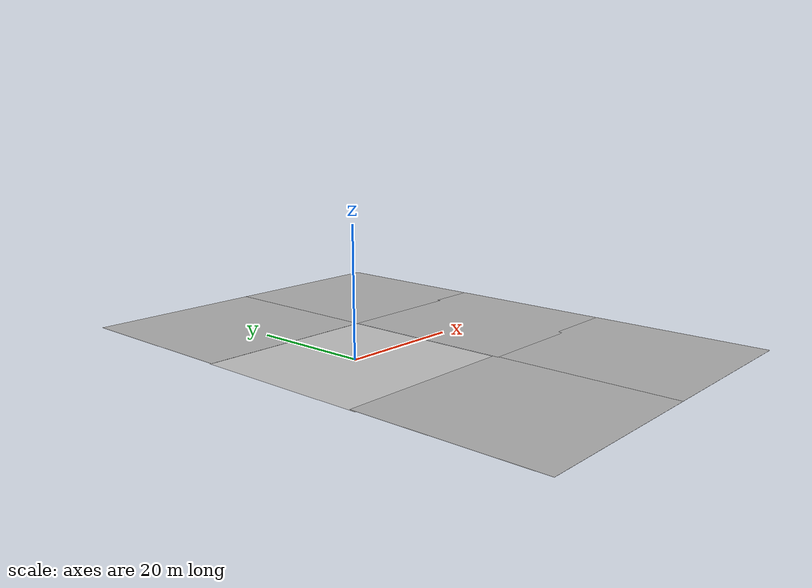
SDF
<sdf version="1.7">
 <world name="default">
  <model name="ISCAS_groundplane">
   <static>1</static>
   <link name="link">
    <collision name="collision">
     <geometry><plane><normal>0 0 1</normal><size>30 30</size></plane></geometry>
     <surface><friction><ode><mu>100</mu><mu2>50</mu2></ode></friction></surface>
    </collision>
    <visual name="visual">
     <cast_shadows>0</cast_shadows>
     <geometry><plane><normal>0 0 1</normal><size>30 30</size></plane></geometry>
     <material>
      <script>
       <uri>model://ISCAS_groundplane/materials/scripts</uri>
       <uri>model://ISCAS_groundplane/materials/textures</uri>
       <name>ISCAS_groundplane/Image</name>
      </script>
     </material>
    </visual>
   </link>
  </model>
  <light name="sun" type="directional">
   <pose>0 0 10 0 -0 0</pose>
   <diffuse>0.8 0.8 0.8 1</diffuse>
   <specular>0.2 0.2 0.2 1</specular>
   <attenuation>
    <range>1000</range>
    <constant>0.9</constant>
    <linear>0.01</linear>
    <quadratic>0.001</quadratic>
   </attenuation>
   <direction>-0.5 0.1 -0.9</direction>
   <spot><inner_angle>0</inner_angle><outer_angle>0</outer_angle><falloff>0</falloff></spot>
  </light>
  <gravity>0 0 -9.8</gravity>
  <magnetic_field>6e-06 2.3e-05 -4.2e-05</magnetic_field>
  <atmosphere type="adiabatic"/>
  <physics type="ode">
   <max_step_size>0.001</max_step_size>
   <real_time_factor>1</real_time_factor>
   <real_time_update_rate>1000</real_time_update_rate>
  </physics>
  <scene><ambient>0.4 0.4 0.4 1</ambient><background>0.7 0.7 0.7 1</background><shadows>1</shadows></scene>
  <spherical_coordinates>
   <surface_model>EARTH_WGS84</surface_model>
   <latitude_deg>0</latitude_deg>
   <longitude_deg>0</longitude_deg>
   <elevation>0</elevation>
   <heading_deg>0</heading_deg>
  </spherical_coordinates>
  <model name="dock">
   <link name="bottom">
    <inertial>
     <pose>0 0.01875 0 0 -0 0</pose>
     <mass>0.8</mass>
     <inertia>
      <ixx>0.00279292</ixx>
      <ixy>0</ixy>
      <ixz>0</ixz>
      <iyy>0.00132083</iyy>
      <iyz>0</iyz>
      <izz>0.00378542</izz>
     </inertia>
    </inertial>
    <collision name="bottom_collision">
     <pose>0 0 0.005 0 -0 0</pose>
     <geometry><box><size>0.18 0.16 0.01</size></box></geometry>
     <surface>
      <contact><ode><kp>1000</kp><kd>1</kd><min_depth>0.001</min_depth></ode></contact>
      <friction><ode><mu>20</mu><mu2>10</mu2></ode></friction>
     </surface>
    </collision>
    <collision name="bottom_fixed_joint_lump__base_collision_1">
     <pose>0 0.05 0.04 0 -0 0</pose>
     <geometry><box><size>0.18 0.06 0.08</size></box></geometry>
    </collision>
    <visual name="bottom_visual">
     <pose>0 0 0.005 0 -0 0</pose>
     <geometry><box><size>0.18 0.16 0.01</size></box></geometry>
     <material>
      <script><name>Gazebo/Black</name><uri>file://media/materials/scripts/gazebo.material</uri></script>
     </material>
    </visual>
    <visual name="bottom_fixed_joint_lump__base_visual_1">
     <pose>0 0.05 0.04 0 -0 0</pose>
     <geometry><box><size>0.18 0.06 0.08</size></box></geometry>
    </visual>
    <visual name="bottom_fixed_joint_lump__dock_right_visual_2">
     <pose>0.005 0.02 0.06 0 0 -1.57</pose>
     <geometry><sphere><radius>0.005</radius></sphere></geometry>
    </visual>
    <visual name="bottom_fixed_joint_lump__dock_left_visual_3">
     <pose>-0.005 0.02 0.06 0 0 -1.57</pose>
     <geometry><sphere><radius>0.005</radius></sphere></geometry>
    </visual>
    <sensor name="ir_right" type="camera">
     <camera>
      <clip><near>0.02</near><far>2.5</far></clip>
      <image><width>20</width><height>20</height></image>
      <horizontal_fov>0.02</horizontal_fov>
      <aspect_ratio>1</aspect_ratio>
     </camera>
     <visualize>0</visualize>
     <always_on>1</always_on>
     <update_rate>10</update_rate>
     <topic>dockir/A3</topic>
     <plugin name="camera_r" filename="libgazebo_ros_camera.so">
      <alwaysOn>1</alwaysOn>
      <updateRate>10.0</updateRate>
      <cameraName>dock/right</cameraName>
      <imageTopicName>image_raw</imageTopicName>
      <cameraInfoTopicName>camera_info</cameraInfoTopicName>
      <frameName>dock_right</frameName>
      <robotNamespace>/</robotNamespace>
     </plugin>
     <pose>0.005 0.02 0.06 0 0 -1.57</pose>
    </sensor>
    <sensor name="ir_left" type="camera">
     <camera>
      <clip><near>0.02</near><far>2.5</far></clip>
      <image><width>20</width><height>20</height></image>
      <horizontal_fov>0.02</horizontal_fov>
      <aspect_ratio>1</aspect_ratio>
     </camera>
     <visualize>1</visualize>
     <always_on>1</always_on>
     <update_rate>10</update_rate>
     <topic>dockir/A3</topic>
     <plugin name="camera_l" filename="libgazebo_ros_camera.so">
      <alwaysOn>1</alwaysOn>
      <updateRate>10.0</updateRate>
      <cameraName>dock/left</cameraName>
      <imageTopicName>image_raw</imageTopicName>
      <cameraInfoTopicName>camera_info</cameraInfoTopicName>
      <frameName>dock_left</frameName>
      <robotNamespace>/</robotNamespace>
     </plugin>
     <pose>-0.005 0.02 0.06 0 0 -1.57</pose>
    </sensor>
   </link>
   <pose>1.00059 -0.0006 -0 1.8e-05 -0 -1.57489</pose>
  </model>
  <model name="ISCAS_groundplane_0">
   <static>1</static>
   <link name="link">
    <collision name="collision">
     <geometry><plane><normal>0 0 1</normal><size>30 30</size></plane></geometry>
     <surface><friction><ode><mu>100</mu><mu2>50</mu2></ode></friction></surface>
    </collision>
    <visual name="visual">
     <cast_shadows>0</cast_shadows>
     <geometry><plane><normal>0 0 1</normal><size>30 30</size></plane></geometry>
     <material>
      <script>
       <uri>model://ISCAS_groundplane/materials/scripts</uri>
       <uri>model://ISCAS_groundplane/materials/textures</uri>
       <name>ISCAS_groundplane/Image</name>
      </script>
     </material>
    </visual>
   </link>
   <pose>-0.00448 29.418 0 0 -0 0</pose>
  </model>
  <model name="ISCAS_groundplane_1">
   <static>1</static>
   <link name="link">
    <collision name="collision">
     <geometry><plane><normal>0 0 1</normal><size>30 30</size></plane></geometry>
     <surface><friction><ode><mu>100</mu><mu2>50</mu2></ode></friction></surface>
    </collision>
    <visual name="visual">
     <cast_shadows>0</cast_shadows>
     <geometry><plane><normal>0 0 1</normal><size>30 30</size></plane></geometry>
     <material>
      <script>
       <uri>model://ISCAS_groundplane/materials/scripts</uri>
       <uri>model://ISCAS_groundplane/materials/textures</uri>
       <name>ISCAS_groundplane/Image</name>
      </script>
     </material>
    </visual>
   </link>
   <pose>29.7865 29.4353 0 0 -0 0</pose>
  </model>
  <model name="ISCAS_groundplane_2">
   <static>1</static>
   <link name="link">
    <collision name="collision">
     <geometry><plane><normal>0 0 1</normal><size>30 30</size></plane></geometry>
     <surface><friction><ode><mu>100</mu><mu2>50</mu2></ode></friction></surface>
    </collision>
    <visual name="visual">
     <cast_shadows>0</cast_shadows>
     <geometry><plane><normal>0 0 1</normal><size>30 30</size></plane></geometry>
     <material>
      <script>
       <uri>model://ISCAS_groundplane/materials/scripts</uri>
       <uri>model://ISCAS_groundplane/materials/textures</uri>
       <name>ISCAS_groundplane/Image</name>
      </script>
     </material>
    </visual>
   </link>
   <pose>29.8457 0.029066 0 0 -0 0</pose>
  </model>
  <model name="ISCAS_groundplane_3">
   <static>1</static>
   <link name="link">
    <collision name="collision">
     <geometry><plane><normal>0 0 1</normal><size>30 30</size></plane></geometry>
     <surface><friction><ode><mu>100</mu><mu2>50</mu2></ode></friction></surface>
    </collision>
    <visual name="visual">
     <cast_shadows>0</cast_shadows>
     <geometry><plane><normal>0 0 1</normal><size>30 30</size></plane></geometry>
     <material>
      <script>
       <uri>model://ISCAS_groundplane/materials/scripts</uri>
       <uri>model://ISCAS_groundplane/materials/textures</uri>
       <name>ISCAS_groundplane/Image</name>
      </script>
     </material>
    </visual>
   </link>
   <pose>29.8927 -29.0654 0 0 -0 0</pose>
  </model>
  <model name="ISCAS_groundplane_4">
   <static>1</static>
   <link name="link">
    <collision name="collision">
     <geometry><plane><normal>0 0 1</normal><size>30 30</size></plane></geometry>
     <surface><friction><ode><mu>100</mu><mu2>50</mu2></ode></friction></surface>
    </collision>
    <visual name="visual">
     <cast_shadows>0</cast_shadows>
     <geometry><plane><normal>0 0 1</normal><size>30 30</size></plane></geometry>
     <material>
      <script>
       <uri>model://ISCAS_groundplane/materials/scripts</uri>
       <uri>model://ISCAS_groundplane/materials/textures</uri>
       <name>ISCAS_groundplane/Image</name>
      </script>
     </material>
    </visual>
   </link>
   <pose>0.024045 -29.0695 0 0 -0 0</pose>
  </model>
 </world>
</sdf>
